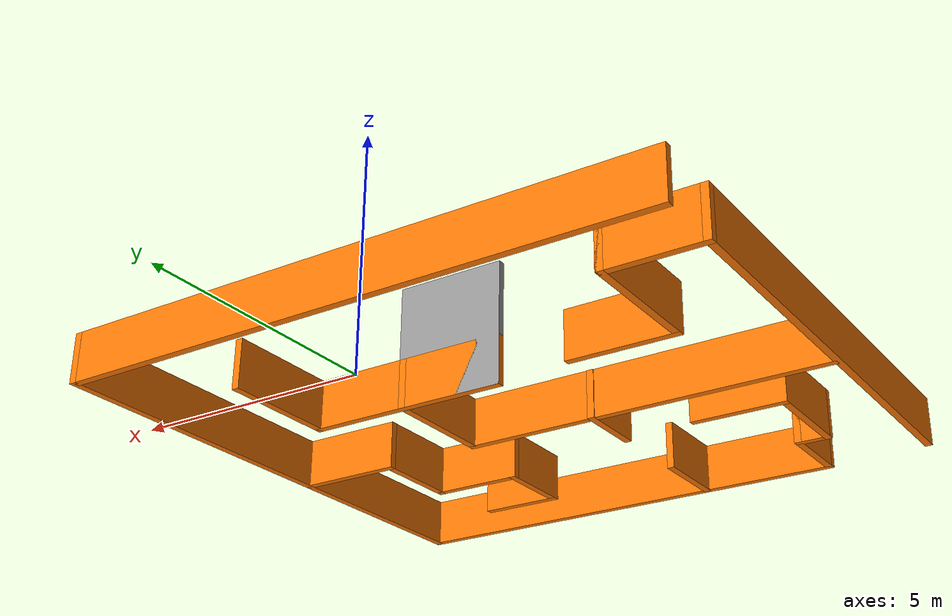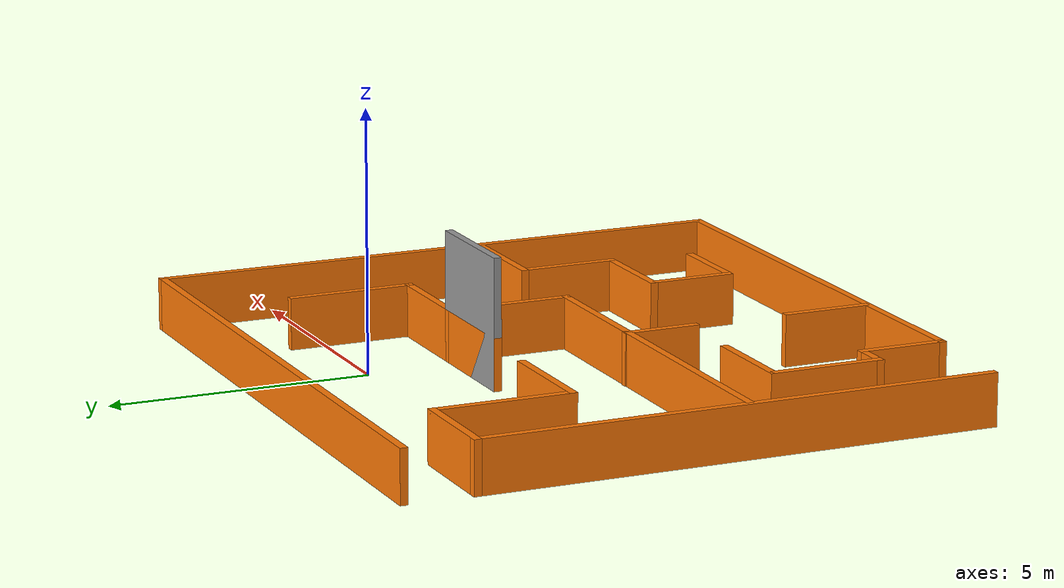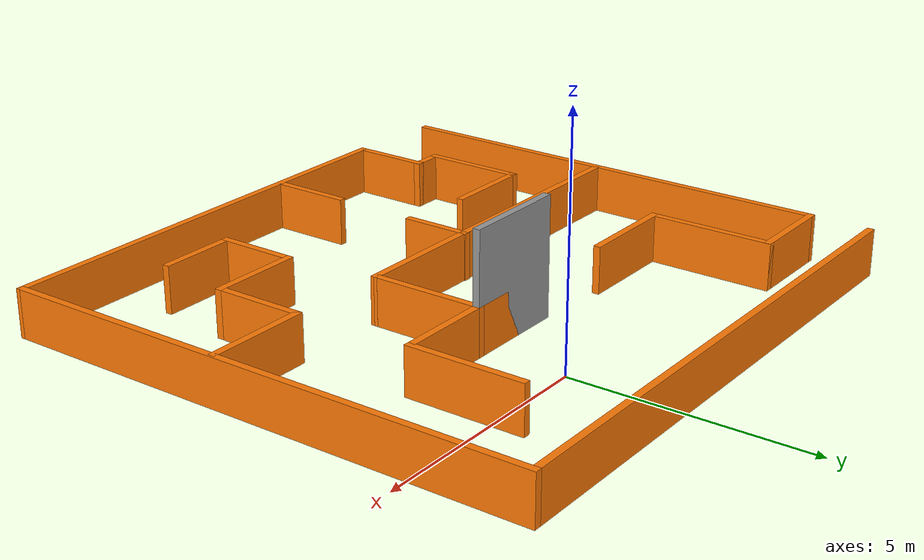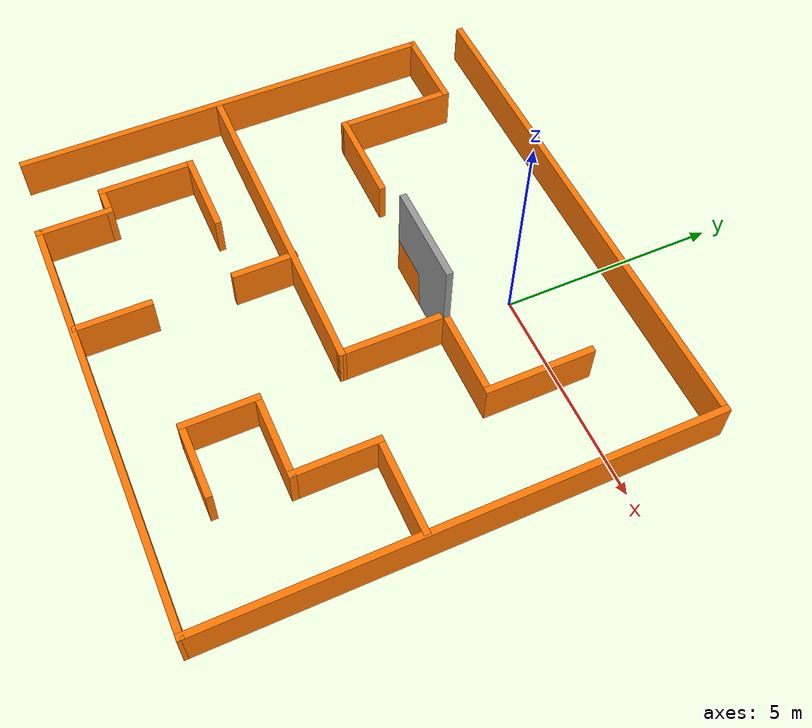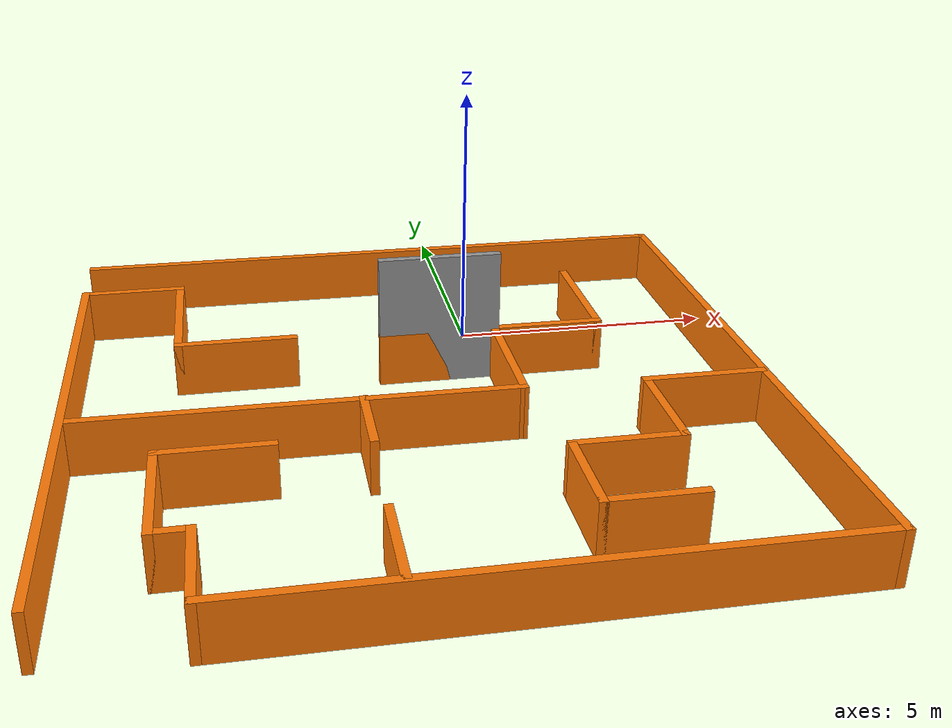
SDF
<?xml version='1.0'?>
<sdf version='1.6'>
  <model name='mybot_maze'>
    <pose frame=''>-1.46116 -3.30062 0 0 -0 0</pose>
    <link name='Wall_13'>
      <collision name='Wall_13_Collision'>
        <geometry>
          <box>
            <size>10 0.15 1</size>
          </box>
        </geometry>
        <pose frame=''>0 0 0.5 0 -0 0</pose>
      </collision>
      <visual name='Wall_13_Visual'>
        <pose frame=''>0 0 0.5 0 -0 0</pose>
        <geometry>
          <box>
            <size>10 0.15 1</size>
          </box>
        </geometry>
        <material>
          <script>
            <uri>file://media/materials/scripts/gazebo.material</uri>
            <name>Gazebo/Grey</name>
          </script>
          <ambient>0.996078 0.47451 0.0196078 1</ambient>
        </material>
      </visual>
      <pose frame=''>1.06416 -5.66738 0 0 -0 3.14159</pose>
    </link>
    <link name='Wall_16'>
      <collision name='Wall_16_Collision'>
        <geometry>
          <box>
            <size>2 0.15 1</size>
          </box>
        </geometry>
        <pose frame=''>0 0 0.5 0 -0 0</pose>
      </collision>
      <visual name='Wall_16_Visual'>
        <pose frame=''>0 0 0.5 0 -0 0</pose>
        <geometry>
          <box>
            <size>2 0.15 1</size>
          </box>
        </geometry>
        <material>
          <script>
            <uri>file://media/materials/scripts/gazebo.material</uri>
            <name>Gazebo/Grey</name>
          </script>
          <ambient>0.996078 0.47451 0.0196078 1</ambient>
        </material>
      </visual>
      <pose frame=''>-5.06784 4.35962 0 0 -0 0</pose>
    </link>
    <link name='Wall_17'>
      <collision name='Wall_17_Collision'>
        <geometry>
          <box>
            <size>2.75 0.15 0.999</size>
          </box>
        </geometry>
        <pose frame=''>0 0 0.4995 0 -0 0</pose>
      </collision>
      <visual name='Wall_17_Visual'>
        <pose frame=''>0 0 0.4995 0 -0 0</pose>
        <geometry>
          <box>
            <size>2.75 0.15 0.999</size>
          </box>
        </geometry>
        <material>
          <script>
            <uri>file://media/materials/scripts/gazebo.material</uri>
            <name>Gazebo/Grey</name>
          </script>
          <ambient>0.996078 0.47451 0.0196078 1</ambient>
        </material>
      </visual>
      <pose frame=''>-4.14284 3.05962 0 0 0 -1.5708</pose>
    </link>
    <link name='Wall_18'>
      <collision name='Wall_18_Collision'>
        <geometry>
          <box>
            <size>2.25 0.15 1</size>
          </box>
        </geometry>
        <pose frame=''>0 0 0.5 0 -0 0</pose>
      </collision>
      <visual name='Wall_18_Visual'>
        <pose frame=''>0 0 0.5 0 -0 0</pose>
        <geometry>
          <box>
            <size>2.25 0.15 1</size>
          </box>
        </geometry>
        <material>
          <script>
            <uri>file://media/materials/scripts/gazebo.material</uri>
            <name>Gazebo/Grey</name>
          </script>
          <ambient>0.996078 0.47451 0.0196078 1</ambient>
        </material>
      </visual>
      <pose frame=''>-3.09284 1.75962 0 0 -0 0</pose>
    </link>
    <link name='Wall_2'>
      <collision name='Wall_2_Collision'>
        <geometry>
          <box>
            <size>12 0.15 1</size>
          </box>
        </geometry>
        <pose frame=''>0 0 0.5 0 -0 0</pose>
      </collision>
      <visual name='Wall_2_Visual'>
        <pose frame=''>0 0 0.5 0 -0 0</pose>
        <geometry>
          <box>
            <size>12 0.15 1</size>
          </box>
        </geometry>
        <material>
          <script>
            <uri>file://media/materials/scripts/gazebo.material</uri>
            <name>Gazebo/Grey</name>
          </script>
          <ambient>0.996078 0.47451 0.0196078 1</ambient>
        </material>
      </visual>
      <pose frame=''>-0.018003 5.66738 0 0 -0 0</pose>
    </link>
    <link name='Wall_20'>
      <collision name='Wall_20_Collision'>
        <geometry>
          <box>
            <size>7.75009 0.15 1</size>
          </box>
        </geometry>
        <pose frame=''>0 0 0.5 0 -0 0</pose>
      </collision>
      <visual name='Wall_20_Visual'>
        <pose frame=''>0 0 0.5 0 -0 0</pose>
        <geometry>
          <box>
            <size>7.75009 0.15 1</size>
          </box>
        </geometry>
        <material>
          <script>
            <uri>file://media/materials/scripts/gazebo.material</uri>
            <name>Gazebo/Grey</name>
          </script>
          <ambient>0.996078 0.47451 0.0196078 1</ambient>
        </material>
      </visual>
      <pose frame=''>-2.09984 -0.772376 0 0 0 -0.004737</pose>
    </link>
    <link name='Wall_21'>
      <collision name='Wall_21_Collision'>
        <geometry>
          <box>
            <size>2.5 0.15 1</size>
          </box>
        </geometry>
        <pose frame=''>0 0 0.5 0 -0 0</pose>
      </collision>
      <visual name='Wall_21_Visual'>
        <pose frame=''>0 0 0.5 0 -0 0</pose>
        <geometry>
          <box>
            <size>2.5 0.15 1</size>
          </box>
        </geometry>
        <material>
          <script>
            <uri>file://media/materials/scripts/gazebo.material</uri>
            <name>Gazebo/Grey</name>
          </script>
          <ambient>0.996078 0.47451 0.0196078 1</ambient>
        </material>
      </visual>
      <pose frame=''>1.70016 0.384624 0 0 -0 1.5708</pose>
    </link>
    <link name='Wall_23'>
      <collision name='Wall_23_Collision'>
        <geometry>
          <box>
            <size>2.25 0.15 2.5</size>
          </box>
        </geometry>
        <pose frame=''>0 0 1.25 0 -0 0</pose>
      </collision>
      <visual name='Wall_23_Visual'>
        <pose frame=''>0 0 1.25 0 -0 0</pose>
        <geometry>
          <box>
            <size>2.25 0.15 2.5</size>
          </box>
        </geometry>
        <material>
          <script>
            <uri>file://media/materials/scripts/gazebo.material</uri>
            <name>Gazebo/Grey</name>
          </script>
          <ambient>1 1 1 1</ambient>
        </material>
      </visual>
      <pose frame=''>0.650163 1.55962 0 0 -0 3.14159</pose>
    </link>
    <link name='Wall_24'>
      <collision name='Wall_24_Collision'>
        <geometry>
          <box>
            <size>4.25 0.15 1</size>
          </box>
        </geometry>
        <pose frame=''>0 0 0.5 0 -0 0</pose>
      </collision>
      <visual name='Wall_24_Visual'>
        <pose frame=''>0 0 0.5 0 -0 0</pose>
        <geometry>
          <box>
            <size>4.25 0.15 1</size>
          </box>
        </geometry>
        <material>
          <script>
            <uri>file://media/materials/scripts/gazebo.material</uri>
            <name>Gazebo/Grey</name>
          </script>
          <ambient>0.996078 0.47451 0.0196078 1</ambient>
        </material>
      </visual>
      <pose frame=''>1.65016 1.55962 0 0 -0 0</pose>
    </link>
    <link name='Wall_25'>
      <collision name='Wall_25_Collision'>
        <geometry>
          <box>
            <size>2.5 0.15 1</size>
          </box>
        </geometry>
        <pose frame=''>0 0 0.5 0 -0 0</pose>
      </collision>
      <visual name='Wall_25_Visual'>
        <pose frame=''>0 0 0.5 0 -0 0</pose>
        <geometry>
          <box>
            <size>2.5 0.15 1</size>
          </box>
        </geometry>
        <material>
          <script>
            <uri>file://media/materials/scripts/gazebo.material</uri>
            <name>Gazebo/Grey</name>
          </script>
          <ambient>0.996078 0.47451 0.0196078 1</ambient>
        </material>
      </visual>
      <pose frame=''>3.70016 2.73462 0 0 -0 1.5708</pose>
    </link>
    <link name='Wall_28'>
      <collision name='Wall_28_Collision'>
        <geometry>
          <box>
            <size>2.25 0.15 1</size>
          </box>
        </geometry>
        <pose frame=''>0 0 0.5 0 -0 0</pose>
      </collision>
      <visual name='Wall_28_Visual'>
        <pose frame=''>0 0 0.5 0 -0 0</pose>
        <geometry>
          <box>
            <size>2.25 0.15 1</size>
          </box>
        </geometry>
        <material>
          <script>
            <uri>file://media/materials/scripts/gazebo.material</uri>
            <name>Gazebo/Grey</name>
          </script>
          <ambient>0.996078 0.47451 0.0196078 1</ambient>
        </material>
      </visual>
      <pose frame=''>4.89516 -0.871376 0 0 -0 3.14159</pose>
    </link>
    <link name='Wall_29'>
      <collision name='Wall_29_Collision'>
        <geometry>
          <box>
            <size>2 0.15 1</size>
          </box>
        </geometry>
        <pose frame=''>0 0 0.5 0 -0 0</pose>
      </collision>
      <visual name='Wall_29_Visual'>
        <pose frame=''>0 0 0.5 0 -0 0</pose>
        <geometry>
          <box>
            <size>2 0.15 1</size>
          </box>
        </geometry>
        <material>
          <script>
            <uri>file://media/materials/scripts/gazebo.material</uri>
            <name>Gazebo/Grey</name>
          </script>
          <ambient>0.996078 0.47451 0.0196078 1</ambient>
        </material>
      </visual>
      <pose frame=''>3.84516 -1.79638 0 0 0 -1.5708</pose>
    </link>
    <link name='Wall_3'>
      <collision name='Wall_3_Collision'>
        <geometry>
          <box>
            <size>11.4851 0.15 1</size>
          </box>
        </geometry>
        <pose frame=''>0 0 0.5 0 -0 0</pose>
      </collision>
      <visual name='Wall_3_Visual'>
        <pose frame=''>0 0 0.5 0 -0 0</pose>
        <geometry>
          <box>
            <size>11.4851 0.15 1</size>
          </box>
        </geometry>
        <material>
          <script>
            <uri>file://media/materials/scripts/gazebo.material</uri>
            <name>Gazebo/Grey</name>
          </script>
          <ambient>0.996078 0.47451 0.0196078 1</ambient>
        </material>
      </visual>
      <pose frame=''>5.99099 0 0 0 0 -1.57112</pose>
    </link>
    <link name='Wall_30'>
      <collision name='Wall_30_Collision'>
        <geometry>
          <box>
            <size>2 0.15 1</size>
          </box>
        </geometry>
        <pose frame=''>0 0 0.5 0 -0 0</pose>
      </collision>
      <visual name='Wall_30_Visual'>
        <pose frame=''>0 0 0.5 0 -0 0</pose>
        <geometry>
          <box>
            <size>2 0.15 1</size>
          </box>
        </geometry>
        <material>
          <script>
            <uri>file://media/materials/scripts/gazebo.material</uri>
            <name>Gazebo/Grey</name>
          </script>
          <ambient>0.996078 0.47451 0.0196078 1</ambient>
        </material>
      </visual>
      <pose frame=''>2.92016 -2.72138 0 0 -0 3.14159</pose>
    </link>
    <link name='Wall_31'>
      <collision name='Wall_31_Collision'>
        <geometry>
          <box>
            <size>1.75 0.15 1</size>
          </box>
        </geometry>
        <pose frame=''>0 0 0.5 0 -0 0</pose>
      </collision>
      <visual name='Wall_31_Visual'>
        <pose frame=''>0 0 0.5 0 -0 0</pose>
        <geometry>
          <box>
            <size>1.75 0.15 1</size>
          </box>
        </geometry>
        <material>
          <script>
            <uri>file://media/materials/scripts/gazebo.material</uri>
            <name>Gazebo/Grey</name>
          </script>
          <ambient>0.996078 0.47451 0.0196078 1</ambient>
        </material>
      </visual>
      <pose frame=''>1.99516 -3.52138 0 0 0 -1.5708</pose>
    </link>
    <link name='Wall_32'>
      <collision name='Wall_32_Collision'>
        <geometry>
          <box>
            <size>1.75 0.15 1</size>
          </box>
        </geometry>
        <pose frame=''>0 0 0.5 0 -0 0</pose>
      </collision>
      <visual name='Wall_32_Visual'>
        <pose frame=''>0 0 0.5 0 -0 0</pose>
        <geometry>
          <box>
            <size>1.75 0.15 1</size>
          </box>
        </geometry>
        <material>
          <script>
            <uri>file://media/materials/scripts/gazebo.material</uri>
            <name>Gazebo/Grey</name>
          </script>
          <ambient>0.996078 0.47451 0.0196078 1</ambient>
        </material>
      </visual>
      <pose frame=''>2.79516 -4.32138 0 0 -0 0</pose>
    </link>
    <link name='Wall_34'>
      <collision name='Wall_34_Collision'>
        <geometry>
          <box>
            <size>1.75 0.15 1</size>
          </box>
        </geometry>
        <pose frame=''>0 0 0.5 0 -0 0</pose>
      </collision>
      <visual name='Wall_34_Visual'>
        <pose frame=''>0 0 0.5 0 -0 0</pose>
        <geometry>
          <box>
            <size>1.75 0.15 1</size>
          </box>
        </geometry>
        <material>
          <script>
            <uri>file://media/materials/scripts/gazebo.material</uri>
            <name>Gazebo/Grey</name>
          </script>
          <ambient>0.996078 0.47451 0.0196078 1</ambient>
        </material>
      </visual>
      <pose frame=''>-1.07784 -4.80538 0 0 -0 1.5708</pose>
    </link>
    <link name='Wall_37'>
      <collision name='Wall_37_Collision'>
        <geometry>
          <box>
            <size>1.5 0.15 1</size>
          </box>
        </geometry>
        <pose frame=''>0 0 0.5 0 -0 0</pose>
      </collision>
      <visual name='Wall_37_Visual'>
        <pose frame=''>0 0 0.5 0 -0 0</pose>
        <geometry>
          <box>
            <size>1.5 0.15 1</size>
          </box>
        </geometry>
        <material>
          <script>
            <uri>file://media/materials/scripts/gazebo.material</uri>
            <name>Gazebo/Grey</name>
          </script>
          <ambient>0.996078 0.47451 0.0196078 1</ambient>
        </material>
      </visual>
      <pose frame=''>-1.04584 -1.43338 0 0 0 -1.5708</pose>
    </link>
    <link name='Wall_39'>
      <collision name='Wall_39_Collision'>
        <geometry>
          <box>
            <size>1.75 0.15 1</size>
          </box>
        </geometry>
        <pose frame=''>0 0 0.5 0 -0 0</pose>
      </collision>
      <visual name='Wall_39_Visual'>
        <pose frame=''>0 0 0.5 0 -0 0</pose>
        <geometry>
          <box>
            <size>1.75 0.15 1</size>
          </box>
        </geometry>
        <material>
          <script>
            <uri>file://media/materials/scripts/gazebo.material</uri>
            <name>Gazebo/Grey</name>
          </script>
          <ambient>0.996078 0.47451 0.0196078 1</ambient>
        </material>
      </visual>
      <pose frame=''>-3.86084 -4.86738 0 0 -0 1.5708</pose>
    </link>
    <link name='Wall_40'>
      <collision name='Wall_40_Collision'>
        <geometry>
          <box>
            <size>0.75 0.15 0.999</size>
          </box>
        </geometry>
        <pose frame=''>0 0 0.4995 0 -0 0</pose>
      </collision>
      <visual name='Wall_40_Visual'>
        <pose frame=''>0 0 0.4995 0 -0 0</pose>
        <geometry>
          <box>
            <size>0.75 0.15 0.999</size>
          </box>
        </geometry>
        <material>
          <script>
            <uri>file://media/materials/scripts/gazebo.material</uri>
            <name>Gazebo/Grey</name>
          </script>
          <ambient>0.996078 0.47451 0.0196078 1</ambient>
        </material>
      </visual>
      <pose frame=''>-4.16084 -4.06738 0 0 -0 3.14159</pose>
    </link>
    <link name='Wall_41'>
      <collision name='Wall_41_Collision'>
        <geometry>
          <box>
            <size>2.25 0.15 1</size>
          </box>
        </geometry>
        <pose frame=''>0 0 0.5 0 -0 0</pose>
      </collision>
      <visual name='Wall_41_Visual'>
        <pose frame=''>0 0 0.5 0 -0 0</pose>
        <geometry>
          <box>
            <size>2.25 0.15 1</size>
          </box>
        </geometry>
        <material>
          <script>
            <uri>file://media/materials/scripts/gazebo.material</uri>
            <name>Gazebo/Grey</name>
          </script>
          <ambient>0.996078 0.47451 0.0196078 1</ambient>
        </material>
      </visual>
      <pose frame=''>-4.46084 -3.01738 0 0 -0 1.5708</pose>
    </link>
    <link name='Wall_42'>
      <collision name='Wall_42_Collision'>
        <geometry>
          <box>
            <size>2 0.15 1</size>
          </box>
        </geometry>
        <pose frame=''>0 0 0.5 0 -0 0</pose>
      </collision>
      <visual name='Wall_42_Visual'>
        <pose frame=''>0 0 0.5 0 -0 0</pose>
        <geometry>
          <box>
            <size>2 0.15 1</size>
          </box>
        </geometry>
        <material>
          <script>
            <uri>file://media/materials/scripts/gazebo.material</uri>
            <name>Gazebo/Grey</name>
          </script>
          <ambient>0.996078 0.47451 0.0196078 1</ambient>
        </material>
      </visual>
      <pose frame=''>-3.53584 -1.96738 0 0 -0 0</pose>
    </link>
    <link name='Wall_7'>
      <collision name='Wall_7_Collision'>
        <geometry>
          <box>
            <size>10 0.15 1</size>
          </box>
        </geometry>
        <pose frame=''>0 0 0.5 0 -0 0</pose>
      </collision>
      <visual name='Wall_7_Visual'>
        <pose frame=''>0 0 0.5 0 -0 0</pose>
        <geometry>
          <box>
            <size>10 0.15 1</size>
          </box>
        </geometry>
        <material>
          <script>
            <uri>file://media/materials/scripts/gazebo.material</uri>
            <name>Gazebo/Grey</name>
          </script>
          <ambient>0.996078 0.47451 0.0196078 1</ambient>
        </material>
      </visual>
      <pose frame=''>-5.99284 -0.565376 0 0 0 -1.5708</pose>
    </link>
    <static>1</static>
  </model>
</sdf>
